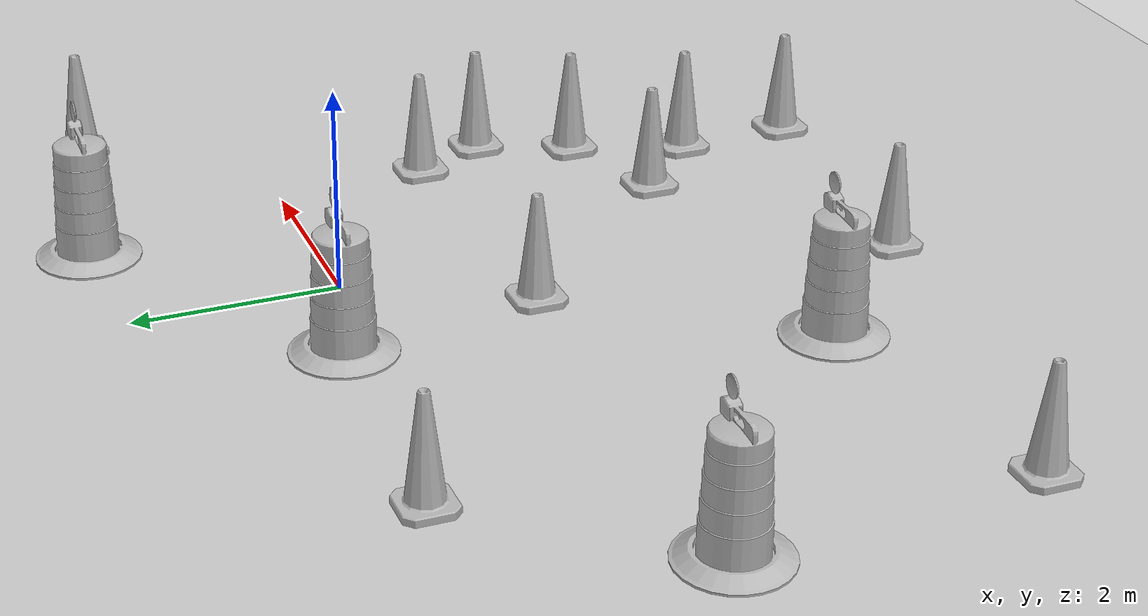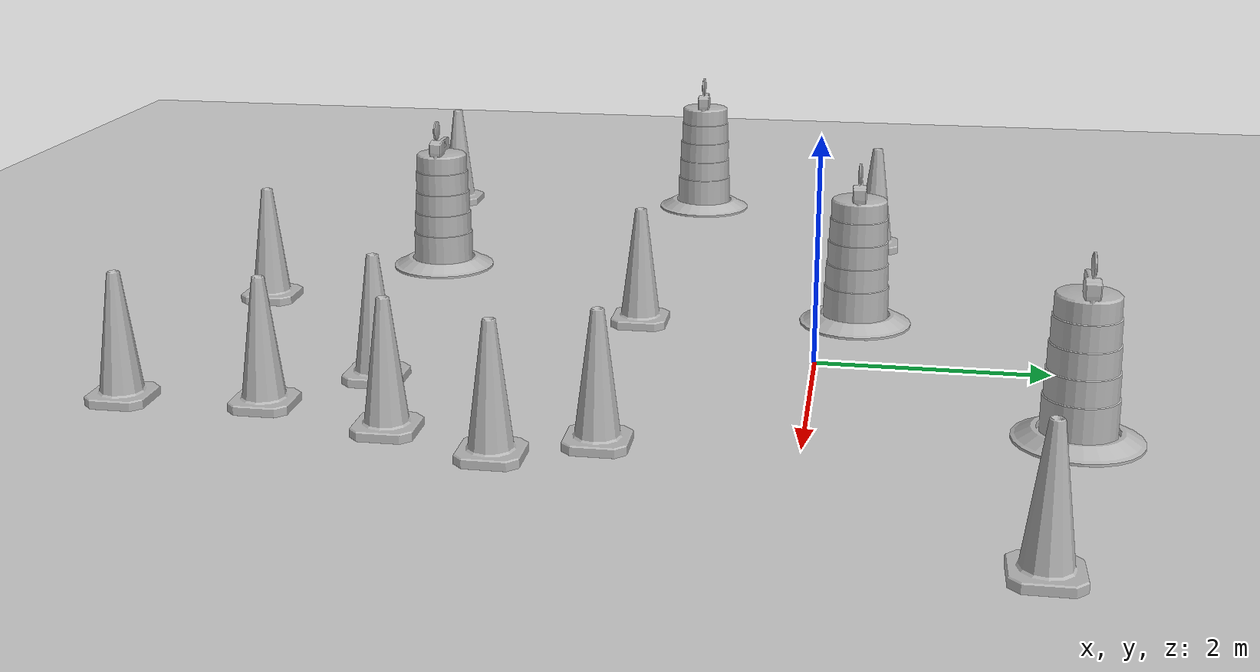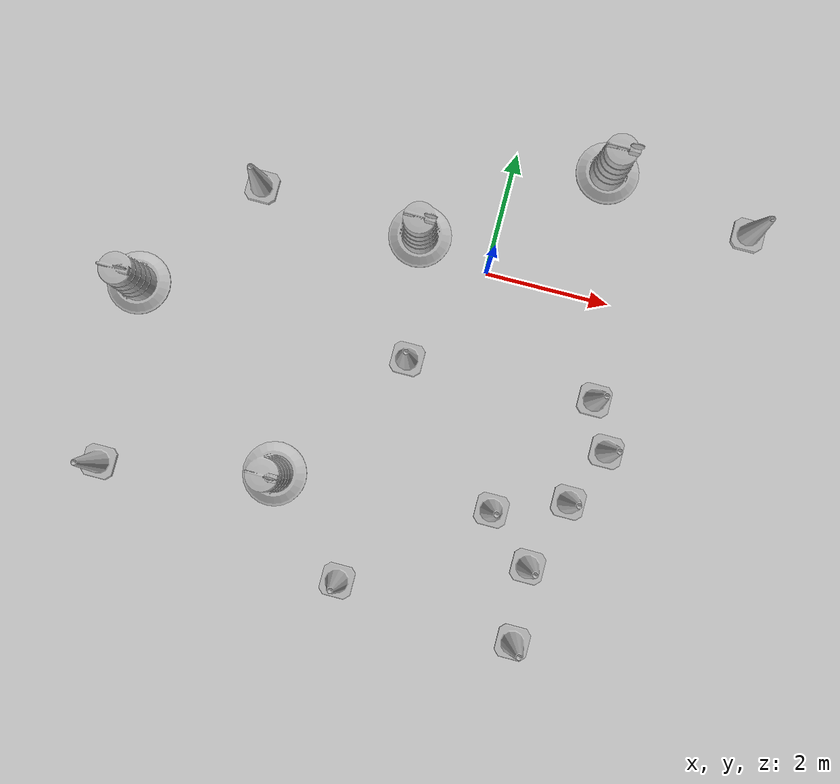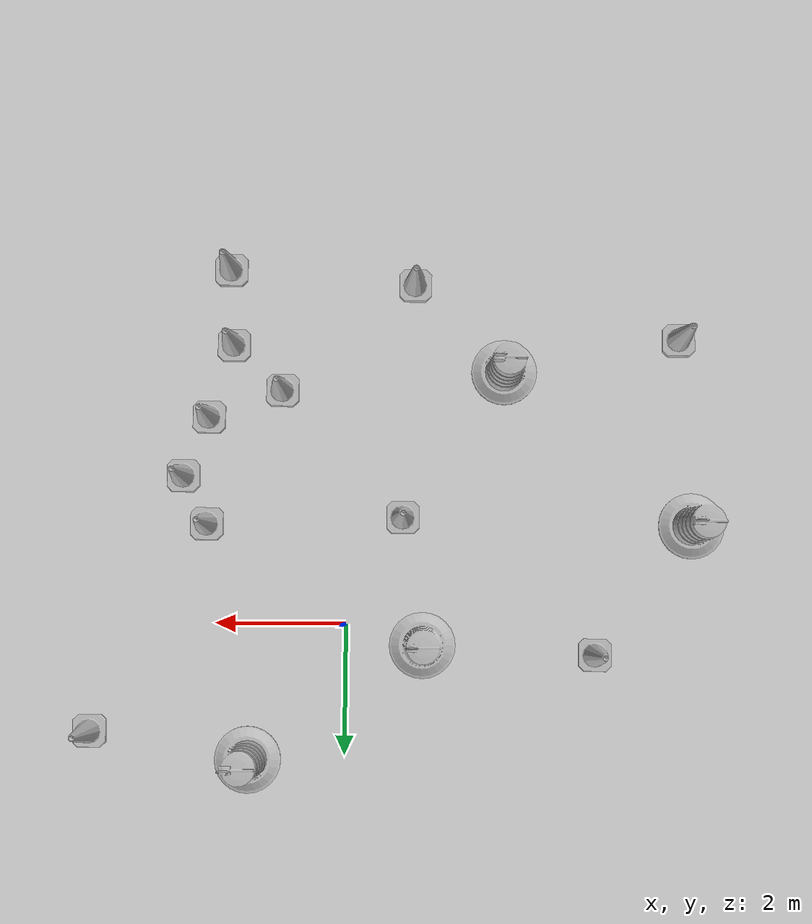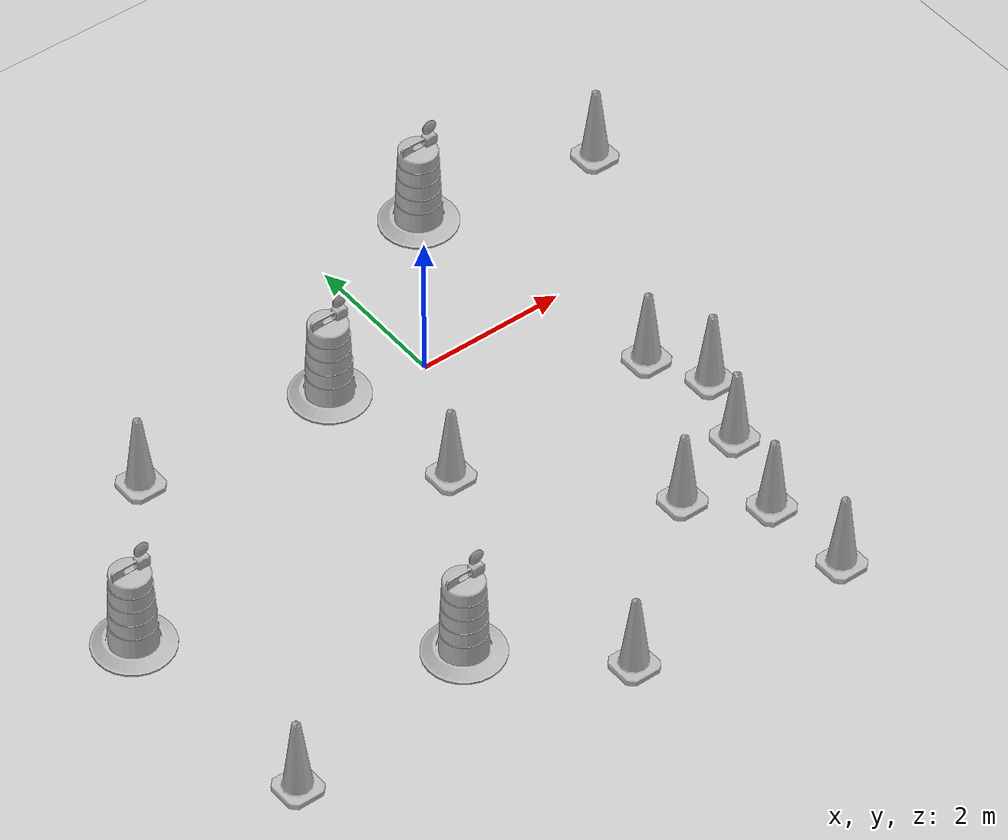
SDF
<sdf version="1.7">
 <world name="default">
  <light name="sun" type="directional">
   <pose>0 0 10 0 -0 0</pose>
   <diffuse>0.8 0.8 0.8 1</diffuse>
   <specular>0.2 0.2 0.2 1</specular>
   <attenuation>
    <range>1000</range>
    <constant>0.9</constant>
    <linear>0.01</linear>
    <quadratic>0.001</quadratic>
   </attenuation>
   <direction>-0.5 0.1 -0.9</direction>
   <spot><inner_angle>0</inner_angle><outer_angle>0</outer_angle><falloff>0</falloff></spot>
  </light>
  <model name="ground_plane">
   <static>1</static>
   <link name="link">
    <collision name="collision">
     <geometry><plane><normal>0 0 1</normal><size>100 100</size></plane></geometry>
     <surface><friction><ode><mu>100</mu><mu2>50</mu2></ode></friction></surface>
    </collision>
    <visual name="visual">
     <cast_shadows>0</cast_shadows>
     <geometry><plane><normal>0 0 1</normal><size>100 100</size></plane></geometry>
     <material>
      <script><uri>file://media/materials/scripts/gazebo.material</uri><name>Gazebo/Grey</name></script>
     </material>
    </visual>
   </link>
  </model>
  <gravity>0 0 -9.8</gravity>
  <magnetic_field>6e-06 2.3e-05 -4.2e-05</magnetic_field>
  <atmosphere type="adiabatic"/>
  <physics type="ode">
   <max_step_size>0.001</max_step_size>
   <real_time_factor>1</real_time_factor>
   <real_time_update_rate>1000</real_time_update_rate>
  </physics>
  <scene><ambient>0.4 0.4 0.4 1</ambient><background>0.7 0.7 0.7 1</background><shadows>1</shadows></scene>
  <audio><device>default</device></audio>
  <spherical_coordinates>
   <surface_model>EARTH_WGS84</surface_model>
   <latitude_deg>0</latitude_deg>
   <longitude_deg>0</longitude_deg>
   <elevation>0</elevation>
   <heading_deg>0</heading_deg>
  </spherical_coordinates>
  <model name="Construction Cone">
   <link name="link">
    <collision name="collision">
     <geometry>
      <mesh><scale>10 10 10</scale><uri>model://construction_cone/meshes/construction_cone.dae</uri></mesh>
     </geometry>
    </collision>
    <visual name="visual">
     <geometry>
      <mesh><scale>10 10 10</scale><uri>model://construction_cone/meshes/construction_cone.dae</uri></mesh>
     </geometry>
    </visual>
    <inertial>
     <inertia><ixx>1</ixx><ixy>0</ixy><ixz>0</ixz><iyy>1</iyy><iyz>0</iyz><izz>1</izz></inertia>
     <mass>1</mass>
    </inertial>
   </link>
   <pose>-1.04408 -5.29027 0 -0 -0 -0</pose>
  </model>
  <model name="Construction Barrel">
   <link name="link">
    <inertial>
     <pose>0 0 0.4 0 -0 0</pose>
     <mass>500</mass>
     <inertia><ixx>51.2096</ixx><iyy>51.2096</iyy><izz>25</izz><ixy>0</ixy><ixz>0</ixz><iyz>0</iyz></inertia>
    </inertial>
    <collision name="collision">
     <geometry><mesh><uri>model://construction_barrel/meshes/construction_barrel.dae</uri></mesh></geometry>
    </collision>
    <visual name="visual">
     <geometry><mesh><uri>model://construction_barrel/meshes/construction_barrel.dae</uri></mesh></geometry>
    </visual>
   </link>
   <pose>-2.43169 -3.93257 -0 0 0 -2.6e-05</pose>
  </model>
  <model name="Construction Cone_0">
   <link name="link">
    <collision name="collision">
     <geometry>
      <mesh><scale>10 10 10</scale><uri>model://construction_cone/meshes/construction_cone.dae</uri></mesh>
     </geometry>
    </collision>
    <visual name="visual">
     <geometry>
      <mesh><scale>10 10 10</scale><uri>model://construction_cone/meshes/construction_cone.dae</uri></mesh>
     </geometry>
    </visual>
    <inertial>
     <inertia><ixx>1</ixx><ixy>0</ixy><ixz>0</ixz><iyy>1</iyy><iyz>0</iyz><izz>1</izz></inertia>
     <mass>1</mass>
    </inertial>
   </link>
   <pose>1.01387 -3.62041 0 -0 -0 -0</pose>
  </model>
  <model name="Construction Barrel_0">
   <link name="link">
    <inertial>
     <pose>0 0 0.4 0 -0 0</pose>
     <mass>500</mass>
     <inertia><ixx>51.2096</ixx><iyy>51.2096</iyy><izz>25</izz><ixy>0</ixy><ixz>0</ixz><iyz>0</iyz></inertia>
    </inertial>
    <collision name="collision">
     <geometry><mesh><uri>model://construction_barrel/meshes/construction_barrel.dae</uri></mesh></geometry>
    </collision>
    <visual name="visual">
     <geometry><mesh><uri>model://construction_barrel/meshes/construction_barrel.dae</uri></mesh></geometry>
    </visual>
   </link>
   <pose>-1.17911 0.316925 -2e-06 2e-06 7e-06 -1.8e-05</pose>
  </model>
  <model name="Construction Cone_1">
   <link name="link">
    <collision name="collision">
     <geometry>
      <mesh><scale>10 10 10</scale><uri>model://construction_cone/meshes/construction_cone.dae</uri></mesh>
     </geometry>
    </collision>
    <visual name="visual">
     <geometry>
      <mesh><scale>10 10 10</scale><uri>model://construction_cone/meshes/construction_cone.dae</uri></mesh>
     </geometry>
    </visual>
    <inertial>
     <inertia><ixx>1</ixx><ixy>0</ixy><ixz>0</ixz><iyy>1</iyy><iyz>0</iyz><izz>1</izz></inertia>
     <mass>1</mass>
    </inertial>
   </link>
   <pose>1.83714 -5.51596 -0 0 -1e-06 0</pose>
  </model>
  <model name="Construction Cone_2">
   <link name="link">
    <collision name="collision">
     <geometry>
      <mesh><scale>10 10 10</scale><uri>model://construction_cone/meshes/construction_cone.dae</uri></mesh>
     </geometry>
    </collision>
    <visual name="visual">
     <geometry>
      <mesh><scale>10 10 10</scale><uri>model://construction_cone/meshes/construction_cone.dae</uri></mesh>
     </geometry>
    </visual>
    <inertial>
     <inertia><ixx>1</ixx><ixy>0</ixy><ixz>0</ixz><iyy>1</iyy><iyz>0</iyz><izz>1</izz></inertia>
     <mass>1</mass>
    </inertial>
   </link>
   <pose>2.15828 -1.5335 -0 0 -0 0</pose>
  </model>
  <model name="Construction Cone_3">
   <link name="link">
    <collision name="collision">
     <geometry>
      <mesh><scale>10 10 10</scale><uri>model://construction_cone/meshes/construction_cone.dae</uri></mesh>
     </geometry>
    </collision>
    <visual name="visual">
     <geometry>
      <mesh><scale>10 10 10</scale><uri>model://construction_cone/meshes/construction_cone.dae</uri></mesh>
     </geometry>
    </visual>
    <inertial>
     <inertia><ixx>1</ixx><ixy>0</ixy><ixz>0</ixz><iyy>1</iyy><iyz>0</iyz><izz>1</izz></inertia>
     <mass>1</mass>
    </inertial>
   </link>
   <pose>-3.82825 0.448093 -0 0 -1e-06 0</pose>
  </model>
  <model name="Construction Barrel_1">
   <link name="link">
    <inertial>
     <pose>0 0 0.4 0 -0 0</pose>
     <mass>500</mass>
     <inertia><ixx>51.2096</ixx><iyy>51.2096</iyy><izz>25</izz><ixy>0</ixy><ixz>0</ixz><iyz>0</iyz></inertia>
    </inertial>
    <collision name="collision">
     <geometry><mesh><uri>model://construction_barrel/meshes/construction_barrel.dae</uri></mesh></geometry>
    </collision>
    <visual name="visual">
     <geometry><mesh><uri>model://construction_barrel/meshes/construction_barrel.dae</uri></mesh></geometry>
    </visual>
   </link>
   <pose>-5.33221 -1.54939 -1e-06 4e-06 -2e-06 -1.5e-05</pose>
  </model>
  <model name="Construction Cone_4">
   <link name="link">
    <collision name="collision">
     <geometry>
      <mesh><scale>10 10 10</scale><uri>model://construction_cone/meshes/construction_cone.dae</uri></mesh>
     </geometry>
    </collision>
    <visual name="visual">
     <geometry>
      <mesh><scale>10 10 10</scale><uri>model://construction_cone/meshes/construction_cone.dae</uri></mesh>
     </geometry>
    </visual>
    <inertial>
     <inertia><ixx>1</ixx><ixy>0</ixy><ixz>0</ixz><iyy>1</iyy><iyz>0</iyz><izz>1</izz></inertia>
     <mass>1</mass>
    </inertial>
   </link>
   <pose>-5.14962 -4.44931 0 -0 -0 -0</pose>
  </model>
  <model name="Construction Cone_5">
   <link name="link">
    <collision name="collision">
     <geometry>
      <mesh><scale>10 10 10</scale><uri>model://construction_cone/meshes/construction_cone.dae</uri></mesh>
     </geometry>
    </collision>
    <visual name="visual">
     <geometry>
      <mesh><scale>10 10 10</scale><uri>model://construction_cone/meshes/construction_cone.dae</uri></mesh>
     </geometry>
    </visual>
    <inertial>
     <inertia><ixx>1</ixx><ixy>0</ixy><ixz>0</ixz><iyy>1</iyy><iyz>0</iyz><izz>1</izz></inertia>
     <mass>1</mass>
    </inertial>
   </link>
   <pose>3.89862 1.65319 -0 0 -0 0</pose>
  </model>
  <model name="Construction Barrel_2">
   <link name="link">
    <inertial>
     <pose>0 0 0.4 0 -0 0</pose>
     <mass>500</mass>
     <inertia><ixx>51.2096</ixx><iyy>51.2096</iyy><izz>25</izz><ixy>0</ixy><ixz>0</ixz><iyz>0</iyz></inertia>
    </inertial>
    <collision name="collision">
     <geometry><mesh><uri>model://construction_barrel/meshes/construction_barrel.dae</uri></mesh></geometry>
    </collision>
    <visual name="visual">
     <geometry><mesh><uri>model://construction_barrel/meshes/construction_barrel.dae</uri></mesh></geometry>
    </visual>
   </link>
   <pose>1.48027 2.07569 -1e-06 -8e-06 -2e-06 -9e-06</pose>
  </model>
  <model name="Construction Cone_6">
   <link name="link">
    <collision name="collision">
     <geometry>
      <mesh><scale>10 10 10</scale><uri>model://construction_cone/meshes/construction_cone.dae</uri></mesh>
     </geometry>
    </collision>
    <visual name="visual">
     <geometry>
      <mesh><scale>10 10 10</scale><uri>model://construction_cone/meshes/construction_cone.dae</uri></mesh>
     </geometry>
    </visual>
    <inertial>
     <inertia><ixx>1</ixx><ixy>0</ixy><ixz>0</ixz><iyy>1</iyy><iyz>0</iyz><izz>1</izz></inertia>
     <mass>1</mass>
    </inertial>
   </link>
   <pose>2.15066 -3.19376 -0 0 -0 0</pose>
  </model>
  <model name="Construction Cone_7">
   <link name="link">
    <collision name="collision">
     <geometry>
      <mesh><scale>10 10 10</scale><uri>model://construction_cone/meshes/construction_cone.dae</uri></mesh>
     </geometry>
    </collision>
    <visual name="visual">
     <geometry>
      <mesh><scale>10 10 10</scale><uri>model://construction_cone/meshes/construction_cone.dae</uri></mesh>
     </geometry>
    </visual>
    <inertial>
     <inertia><ixx>1</ixx><ixy>0</ixy><ixz>0</ixz><iyy>1</iyy><iyz>0</iyz><izz>1</izz></inertia>
     <mass>1</mass>
    </inertial>
   </link>
   <pose>2.53374 -2.27526 -0 0 -1e-06 0</pose>
  </model>
  <model name="Construction Cone_8">
   <link name="link">
    <collision name="collision">
     <geometry>
      <mesh><scale>10 10 10</scale><uri>model://construction_cone/meshes/construction_cone.dae</uri></mesh>
     </geometry>
    </collision>
    <visual name="visual">
     <geometry>
      <mesh><scale>10 10 10</scale><uri>model://construction_cone/meshes/construction_cone.dae</uri></mesh>
     </geometry>
    </visual>
    <inertial>
     <inertia><ixx>1</ixx><ixy>0</ixy><ixz>0</ixz><iyy>1</iyy><iyz>0</iyz><izz>1</izz></inertia>
     <mass>1</mass>
    </inertial>
   </link>
   <pose>1.77894 -4.32588 0 -0 -0 -0</pose>
  </model>
  <model name="Construction Cone_9">
   <link name="link">
    <collision name="collision">
     <geometry>
      <mesh><scale>10 10 10</scale><uri>model://construction_cone/meshes/construction_cone.dae</uri></mesh>
     </geometry>
    </collision>
    <visual name="visual">
     <geometry>
      <mesh><scale>10 10 10</scale><uri>model://construction_cone/meshes/construction_cone.dae</uri></mesh>
     </geometry>
    </visual>
    <inertial>
     <inertia><ixx>1</ixx><ixy>0</ixy><ixz>0</ixz><iyy>1</iyy><iyz>0</iyz><izz>1</izz></inertia>
     <mass>1</mass>
    </inertial>
   </link>
   <pose>-0.87001 -1.6502 -0 0 -1e-06 0</pose>
  </model>
 </world>
</sdf>
